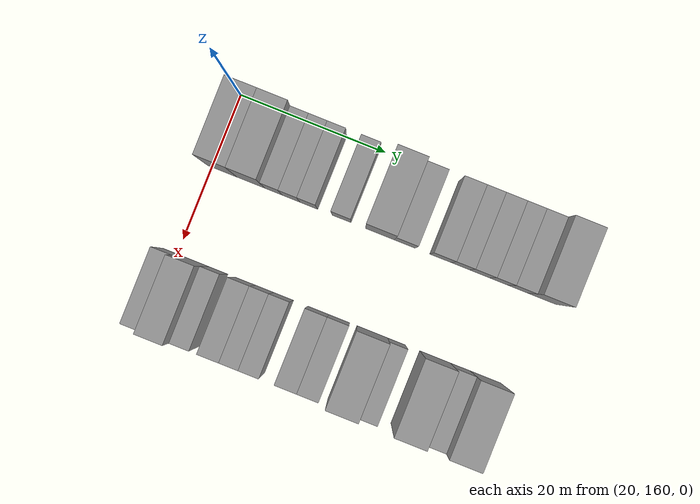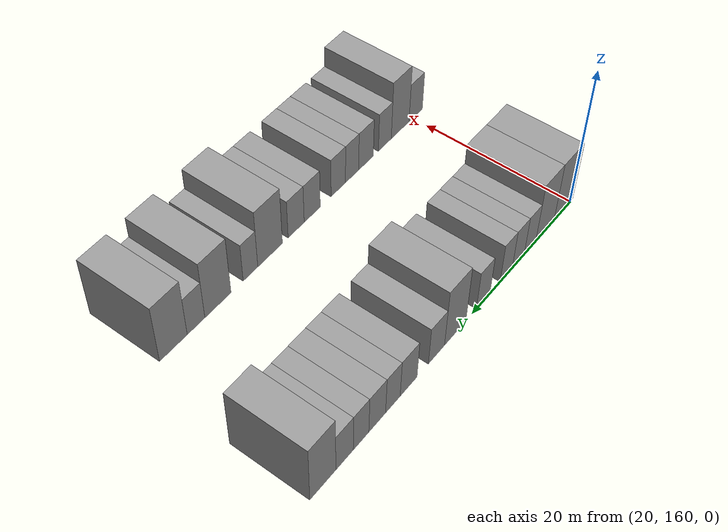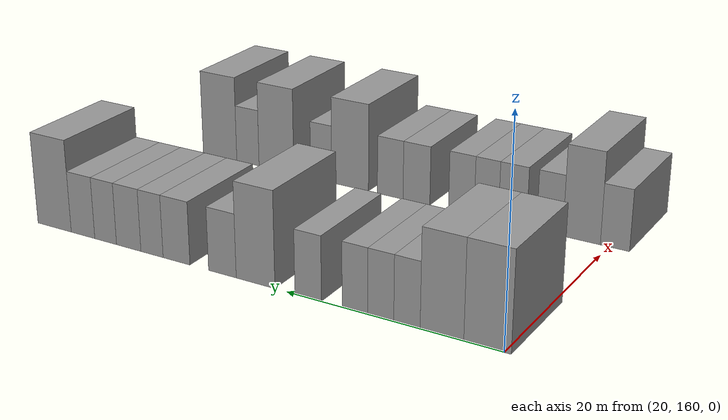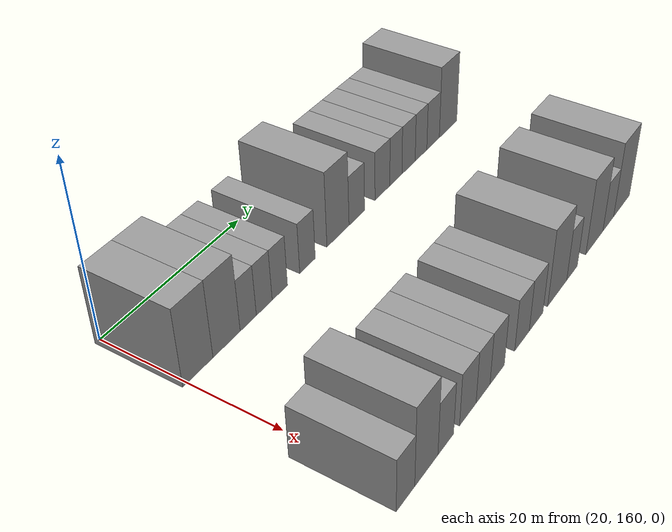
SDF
<sdf version="1.6">
 <world name="default">
  <model name="building_95">
   <static>1</static>
   <pose>25.0000 161.4505 0 0.000000 0.000000 0.000000</pose>
   <link name="link">
    <pose>0 0 4.50 0 0 0</pose>
    <collision name="collision"><geometry><box><size>10.0000 4.0859 9.0000</size></box></geometry></collision>
    <visual name="visual">
     <cast_shadows>0</cast_shadows>
     <geometry><box><size>10.0000 4.0859 9.0000</size></box></geometry>
     <material>
      <script>
       <uri>model://grey_wall/materials/scripts</uri>
       <uri>model://grey_wall/materials/textures</uri>
       <name>vrc/grey_wall</name>
      </script>
     </material>
    </visual>
   </link>
  </model>
  <model name="building_96">
   <static>1</static>
   <pose>25.0000 165.4312 0 0.000000 0.000000 0.000000</pose>
   <link name="link">
    <pose>0 0 4.50 0 0 0</pose>
    <collision name="collision"><geometry><box><size>10.0000 3.8757 9.0000</size></box></geometry></collision>
    <visual name="visual">
     <cast_shadows>0</cast_shadows>
     <geometry><box><size>10.0000 3.8757 9.0000</size></box></geometry>
     <material>
      <script>
       <uri>model://grey_wall/materials/scripts</uri>
       <uri>model://grey_wall/materials/textures</uri>
       <name>vrc/grey_wall</name>
      </script>
     </material>
    </visual>
   </link>
  </model>
  <model name="building_97">
   <static>1</static>
   <pose>25.0000 168.5709 0 0.000000 0.000000 0.000000</pose>
   <link name="link">
    <pose>0 0 3.00 0 0 0</pose>
    <collision name="collision"><geometry><box><size>10.0000 2.4036 6.0000</size></box></geometry></collision>
    <visual name="visual">
     <cast_shadows>0</cast_shadows>
     <geometry><box><size>10.0000 2.4036 6.0000</size></box></geometry>
     <material>
      <script>
       <uri>model://grey_wall/materials/scripts</uri>
       <uri>model://grey_wall/materials/textures</uri>
       <name>vrc/grey_wall</name>
      </script>
     </material>
    </visual>
   </link>
  </model>
  <model name="building_98">
   <static>1</static>
   <pose>25.0000 170.9835 0 0.000000 0.000000 0.000000</pose>
   <link name="link">
    <pose>0 0 3.00 0 0 0</pose>
    <collision name="collision"><geometry><box><size>10.0000 2.4217 6.0000</size></box></geometry></collision>
    <visual name="visual">
     <cast_shadows>0</cast_shadows>
     <geometry><box><size>10.0000 2.4217 6.0000</size></box></geometry>
     <material>
      <script>
       <uri>model://grey_wall/materials/scripts</uri>
       <uri>model://grey_wall/materials/textures</uri>
       <name>vrc/grey_wall</name>
      </script>
     </material>
    </visual>
   </link>
  </model>
  <model name="building_99">
   <static>1</static>
   <pose>25.0000 173.4067 0 0.000000 0.000000 0.000000</pose>
   <link name="link">
    <pose>0 0 3.00 0 0 0</pose>
    <collision name="collision"><geometry><box><size>10.0000 2.4247 6.0000</size></box></geometry></collision>
    <visual name="visual">
     <cast_shadows>0</cast_shadows>
     <geometry><box><size>10.0000 2.4247 6.0000</size></box></geometry>
     <material>
      <script>
       <uri>model://grey_wall/materials/scripts</uri>
       <uri>model://grey_wall/materials/textures</uri>
       <name>vrc/grey_wall</name>
      </script>
     </material>
    </visual>
   </link>
  </model>
  <model name="building_100">
   <static>1</static>
   <pose>25.0000 177.9200 0 0.000000 0.000000 0.000000</pose>
   <link name="link">
    <pose>0 0 3.00 0 0 0</pose>
    <collision name="collision"><geometry><box><size>10.0000 2.6019 6.0000</size></box></geometry></collision>
    <visual name="visual">
     <cast_shadows>0</cast_shadows>
     <geometry><box><size>10.0000 2.6019 6.0000</size></box></geometry>
     <material>
      <script>
       <uri>model://grey_wall/materials/scripts</uri>
       <uri>model://grey_wall/materials/textures</uri>
       <name>vrc/grey_wall</name>
      </script>
     </material>
    </visual>
   </link>
  </model>
  <model name="building_101">
   <static>1</static>
   <pose>25.0000 183.2006 0 0.000000 0.000000 0.000000</pose>
   <link name="link">
    <pose>0 0 4.50 0 0 0</pose>
    <collision name="collision"><geometry><box><size>10.0000 3.9595 9.0000</size></box></geometry></collision>
    <visual name="visual">
     <cast_shadows>0</cast_shadows>
     <geometry><box><size>10.0000 3.9595 9.0000</size></box></geometry>
     <material>
      <script>
       <uri>model://grey_wall/materials/scripts</uri>
       <uri>model://grey_wall/materials/textures</uri>
       <name>vrc/grey_wall</name>
      </script>
     </material>
    </visual>
   </link>
  </model>
  <model name="building_102">
   <static>1</static>
   <pose>25.0000 186.6305 0 0.000000 0.000000 0.000000</pose>
   <link name="link">
    <pose>0 0 3.00 0 0 0</pose>
    <collision name="collision"><geometry><box><size>10.0000 2.9003 6.0000</size></box></geometry></collision>
    <visual name="visual">
     <cast_shadows>0</cast_shadows>
     <geometry><box><size>10.0000 2.9003 6.0000</size></box></geometry>
     <material>
      <script>
       <uri>model://grey_wall/materials/scripts</uri>
       <uri>model://grey_wall/materials/textures</uri>
       <name>vrc/grey_wall</name>
      </script>
     </material>
    </visual>
   </link>
  </model>
  <model name="building_103">
   <static>1</static>
   <pose>25.0000 191.5442 0 0.000000 0.000000 0.000000</pose>
   <link name="link">
    <pose>0 0 3.00 0 0 0</pose>
    <collision name="collision"><geometry><box><size>10.0000 2.9269 6.0000</size></box></geometry></collision>
    <visual name="visual">
     <cast_shadows>0</cast_shadows>
     <geometry><box><size>10.0000 2.9269 6.0000</size></box></geometry>
     <material>
      <script>
       <uri>model://grey_wall/materials/scripts</uri>
       <uri>model://grey_wall/materials/textures</uri>
       <name>vrc/grey_wall</name>
      </script>
     </material>
    </visual>
   </link>
  </model>
  <model name="building_104">
   <static>1</static>
   <pose>25.0000 194.2421 0 0.000000 0.000000 0.000000</pose>
   <link name="link">
    <pose>0 0 3.00 0 0 0</pose>
    <collision name="collision"><geometry><box><size>10.0000 2.4690 6.0000</size></box></geometry></collision>
    <visual name="visual">
     <cast_shadows>0</cast_shadows>
     <geometry><box><size>10.0000 2.4690 6.0000</size></box></geometry>
     <material>
      <script>
       <uri>model://grey_wall/materials/scripts</uri>
       <uri>model://grey_wall/materials/textures</uri>
       <name>vrc/grey_wall</name>
      </script>
     </material>
    </visual>
   </link>
  </model>
  <model name="building_105">
   <static>1</static>
   <pose>25.0000 196.8611 0 0.000000 0.000000 0.000000</pose>
   <link name="link">
    <pose>0 0 3.00 0 0 0</pose>
    <collision name="collision"><geometry><box><size>10.0000 2.7690 6.0000</size></box></geometry></collision>
    <visual name="visual">
     <cast_shadows>0</cast_shadows>
     <geometry><box><size>10.0000 2.7690 6.0000</size></box></geometry>
     <material>
      <script>
       <uri>model://grey_wall/materials/scripts</uri>
       <uri>model://grey_wall/materials/textures</uri>
       <name>vrc/grey_wall</name>
      </script>
     </material>
    </visual>
   </link>
  </model>
  <model name="building_106">
   <static>1</static>
   <pose>25.0000 199.5034 0 0.000000 0.000000 0.000000</pose>
   <link name="link">
    <pose>0 0 3.00 0 0 0</pose>
    <collision name="collision"><geometry><box><size>10.0000 2.5157 6.0000</size></box></geometry></collision>
    <visual name="visual">
     <cast_shadows>0</cast_shadows>
     <geometry><box><size>10.0000 2.5157 6.0000</size></box></geometry>
     <material>
      <script>
       <uri>model://grey_wall/materials/scripts</uri>
       <uri>model://grey_wall/materials/textures</uri>
       <name>vrc/grey_wall</name>
      </script>
     </material>
    </visual>
   </link>
  </model>
  <model name="building_107">
   <static>1</static>
   <pose>25.0000 202.1481 0 0.000000 0.000000 0.000000</pose>
   <link name="link">
    <pose>0 0 3.00 0 0 0</pose>
    <collision name="collision"><geometry><box><size>10.0000 2.7737 6.0000</size></box></geometry></collision>
    <visual name="visual">
     <cast_shadows>0</cast_shadows>
     <geometry><box><size>10.0000 2.7737 6.0000</size></box></geometry>
     <material>
      <script>
       <uri>model://grey_wall/materials/scripts</uri>
       <uri>model://grey_wall/materials/textures</uri>
       <name>vrc/grey_wall</name>
      </script>
     </material>
    </visual>
   </link>
  </model>
  <model name="building_108">
   <static>1</static>
   <pose>25.0000 205.5388 0 0.000000 0.000000 0.000000</pose>
   <link name="link">
    <pose>0 0 4.50 0 0 0</pose>
    <collision name="collision"><geometry><box><size>10.0000 4.0077 9.0000</size></box></geometry></collision>
    <visual name="visual">
     <cast_shadows>0</cast_shadows>
     <geometry><box><size>10.0000 4.0077 9.0000</size></box></geometry>
     <material>
      <script>
       <uri>model://grey_wall/materials/scripts</uri>
       <uri>model://grey_wall/materials/textures</uri>
       <name>vrc/grey_wall</name>
      </script>
     </material>
    </visual>
   </link>
  </model>
  <model name="building_203">
   <static>1</static>
   <pose>47.0000 159.4070 0 0.000000 0.000000 0.000000</pose>
   <link name="link">
    <pose>0 0 3.00 0 0 0</pose>
    <collision name="collision"><geometry><box><size>10.0000 2.7623 6.0000</size></box></geometry></collision>
    <visual name="visual">
     <cast_shadows>0</cast_shadows>
     <geometry><box><size>10.0000 2.7623 6.0000</size></box></geometry>
     <material>
      <script>
       <uri>model://grey_wall/materials/scripts</uri>
       <uri>model://grey_wall/materials/textures</uri>
       <name>vrc/grey_wall</name>
      </script>
     </material>
    </visual>
   </link>
  </model>
  <model name="building_204">
   <static>1</static>
   <pose>47.0000 162.6042 0 0.000000 0.000000 0.000000</pose>
   <link name="link">
    <pose>0 0 4.50 0 0 0</pose>
    <collision name="collision"><geometry><box><size>10.0000 3.6320 9.0000</size></box></geometry></collision>
    <visual name="visual">
     <cast_shadows>0</cast_shadows>
     <geometry><box><size>10.0000 3.6320 9.0000</size></box></geometry>
     <material>
      <script>
       <uri>model://grey_wall/materials/scripts</uri>
       <uri>model://grey_wall/materials/textures</uri>
       <name>vrc/grey_wall</name>
      </script>
     </material>
    </visual>
   </link>
  </model>
  <model name="building_205">
   <static>1</static>
   <pose>47.0000 165.7108 0 0.000000 0.000000 0.000000</pose>
   <link name="link">
    <pose>0 0 3.00 0 0 0</pose>
    <collision name="collision"><geometry><box><size>10.0000 2.5812 6.0000</size></box></geometry></collision>
    <visual name="visual">
     <cast_shadows>0</cast_shadows>
     <geometry><box><size>10.0000 2.5812 6.0000</size></box></geometry>
     <material>
      <script>
       <uri>model://grey_wall/materials/scripts</uri>
       <uri>model://grey_wall/materials/textures</uri>
       <name>vrc/grey_wall</name>
      </script>
     </material>
    </visual>
   </link>
  </model>
  <model name="building_206">
   <static>1</static>
   <pose>47.0000 169.4310 0 0.000000 0.000000 0.000000</pose>
   <link name="link">
    <pose>0 0 3.00 0 0 0</pose>
    <collision name="collision"><geometry><box><size>10.0000 2.8592 6.0000</size></box></geometry></collision>
    <visual name="visual">
     <cast_shadows>0</cast_shadows>
     <geometry><box><size>10.0000 2.8592 6.0000</size></box></geometry>
     <material>
      <script>
       <uri>model://grey_wall/materials/scripts</uri>
       <uri>model://grey_wall/materials/textures</uri>
       <name>vrc/grey_wall</name>
      </script>
     </material>
    </visual>
   </link>
  </model>
  <model name="building_207">
   <static>1</static>
   <pose>47.0000 172.1164 0 0.000000 0.000000 0.000000</pose>
   <link name="link">
    <pose>0 0 3.00 0 0 0</pose>
    <collision name="collision"><geometry><box><size>10.0000 2.5115 6.0000</size></box></geometry></collision>
    <visual name="visual">
     <cast_shadows>0</cast_shadows>
     <geometry><box><size>10.0000 2.5115 6.0000</size></box></geometry>
     <material>
      <script>
       <uri>model://grey_wall/materials/scripts</uri>
       <uri>model://grey_wall/materials/textures</uri>
       <name>vrc/grey_wall</name>
      </script>
     </material>
    </visual>
   </link>
  </model>
  <model name="building_208">
   <static>1</static>
   <pose>47.0000 174.7204 0 0.000000 0.000000 0.000000</pose>
   <link name="link">
    <pose>0 0 3.00 0 0 0</pose>
    <collision name="collision"><geometry><box><size>10.0000 2.6966 6.0000</size></box></geometry></collision>
    <visual name="visual">
     <cast_shadows>0</cast_shadows>
     <geometry><box><size>10.0000 2.6966 6.0000</size></box></geometry>
     <material>
      <script>
       <uri>model://grey_wall/materials/scripts</uri>
       <uri>model://grey_wall/materials/textures</uri>
       <name>vrc/grey_wall</name>
      </script>
     </material>
    </visual>
   </link>
  </model>
  <model name="building_209">
   <static>1</static>
   <pose>47.0000 179.5239 0 0.000000 0.000000 0.000000</pose>
   <link name="link">
    <pose>0 0 3.00 0 0 0</pose>
    <collision name="collision"><geometry><box><size>10.0000 2.9105 6.0000</size></box></geometry></collision>
    <visual name="visual">
     <cast_shadows>0</cast_shadows>
     <geometry><box><size>10.0000 2.9105 6.0000</size></box></geometry>
     <material>
      <script>
       <uri>model://grey_wall/materials/scripts</uri>
       <uri>model://grey_wall/materials/textures</uri>
       <name>vrc/grey_wall</name>
      </script>
     </material>
    </visual>
   </link>
  </model>
  <model name="building_210">
   <static>1</static>
   <pose>47.0000 182.4022 0 0.000000 0.000000 0.000000</pose>
   <link name="link">
    <pose>0 0 3.00 0 0 0</pose>
    <collision name="collision"><geometry><box><size>10.0000 2.8461 6.0000</size></box></geometry></collision>
    <visual name="visual">
     <cast_shadows>0</cast_shadows>
     <geometry><box><size>10.0000 2.8461 6.0000</size></box></geometry>
     <material>
      <script>
       <uri>model://grey_wall/materials/scripts</uri>
       <uri>model://grey_wall/materials/textures</uri>
       <name>vrc/grey_wall</name>
      </script>
     </material>
    </visual>
   </link>
  </model>
  <model name="building_211">
   <static>1</static>
   <pose>47.0000 186.9353 0 0.000000 0.000000 0.000000</pose>
   <link name="link">
    <pose>0 0 4.50 0 0 0</pose>
    <collision name="collision"><geometry><box><size>10.0000 4.2202 9.0000</size></box></geometry></collision>
    <visual name="visual">
     <cast_shadows>0</cast_shadows>
     <geometry><box><size>10.0000 4.2202 9.0000</size></box></geometry>
     <material>
      <script>
       <uri>model://grey_wall/materials/scripts</uri>
       <uri>model://grey_wall/materials/textures</uri>
       <name>vrc/grey_wall</name>
      </script>
     </material>
    </visual>
   </link>
  </model>
  <model name="building_212">
   <static>1</static>
   <pose>47.0000 190.2691 0 0.000000 0.000000 0.000000</pose>
   <link name="link">
    <pose>0 0 3.00 0 0 0</pose>
    <collision name="collision"><geometry><box><size>10.0000 2.4474 6.0000</size></box></geometry></collision>
    <visual name="visual">
     <cast_shadows>0</cast_shadows>
     <geometry><box><size>10.0000 2.4474 6.0000</size></box></geometry>
     <material>
      <script>
       <uri>model://grey_wall/materials/scripts</uri>
       <uri>model://grey_wall/materials/textures</uri>
       <name>vrc/grey_wall</name>
      </script>
     </material>
    </visual>
   </link>
  </model>
  <model name="building_213">
   <static>1</static>
   <pose>47.0000 195.5919 0 0.000000 0.000000 0.000000</pose>
   <link name="link">
    <pose>0 0 4.50 0 0 0</pose>
    <collision name="collision"><geometry><box><size>10.0000 4.1982 9.0000</size></box></geometry></collision>
    <visual name="visual">
     <cast_shadows>0</cast_shadows>
     <geometry><box><size>10.0000 4.1982 9.0000</size></box></geometry>
     <material>
      <script>
       <uri>model://grey_wall/materials/scripts</uri>
       <uri>model://grey_wall/materials/textures</uri>
       <name>vrc/grey_wall</name>
      </script>
     </material>
    </visual>
   </link>
  </model>
  <model name="building_214">
   <static>1</static>
   <pose>47.0000 199.0688 0 0.000000 0.000000 0.000000</pose>
   <link name="link">
    <pose>0 0 3.00 0 0 0</pose>
    <collision name="collision"><geometry><box><size>10.0000 2.7555 6.0000</size></box></geometry></collision>
    <visual name="visual">
     <cast_shadows>0</cast_shadows>
     <geometry><box><size>10.0000 2.7555 6.0000</size></box></geometry>
     <material>
      <script>
       <uri>model://grey_wall/materials/scripts</uri>
       <uri>model://grey_wall/materials/textures</uri>
       <name>vrc/grey_wall</name>
      </script>
     </material>
    </visual>
   </link>
  </model>
  <model name="building_215">
   <static>1</static>
   <pose>47.0000 202.5587 0 0.000000 0.000000 0.000000</pose>
   <link name="link">
    <pose>0 0 4.50 0 0 0</pose>
    <collision name="collision"><geometry><box><size>10.0000 4.2243 9.0000</size></box></geometry></collision>
    <visual name="visual">
     <cast_shadows>0</cast_shadows>
     <geometry><box><size>10.0000 4.2243 9.0000</size></box></geometry>
     <material>
      <script>
       <uri>model://grey_wall/materials/scripts</uri>
       <uri>model://grey_wall/materials/textures</uri>
       <name>vrc/grey_wall</name>
      </script>
     </material>
    </visual>
   </link>
  </model>
 </world>
</sdf>
